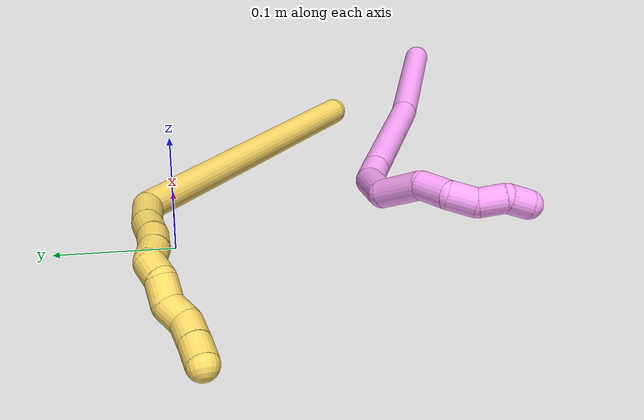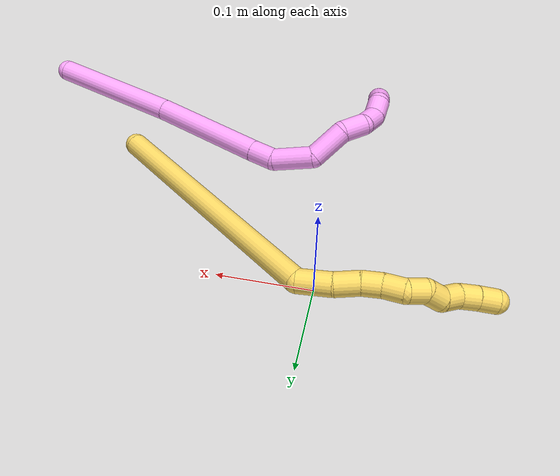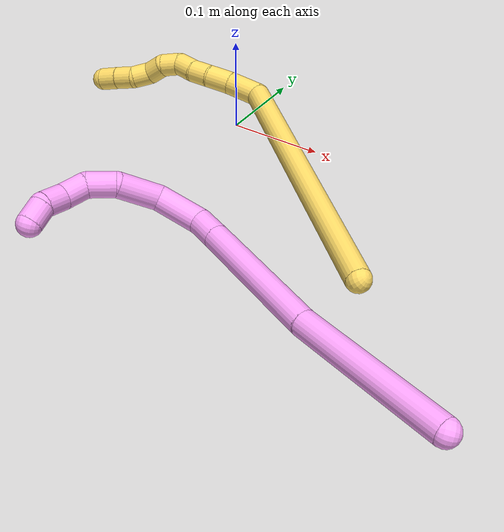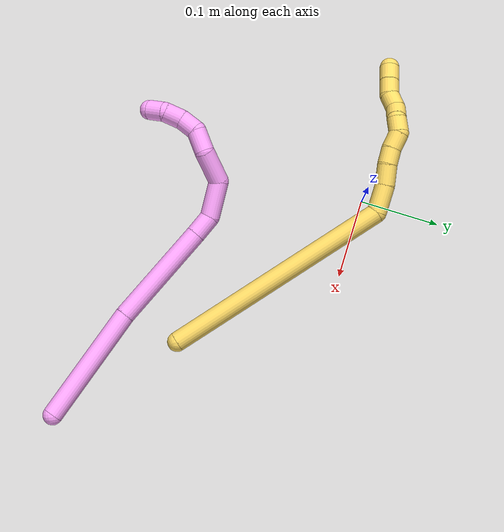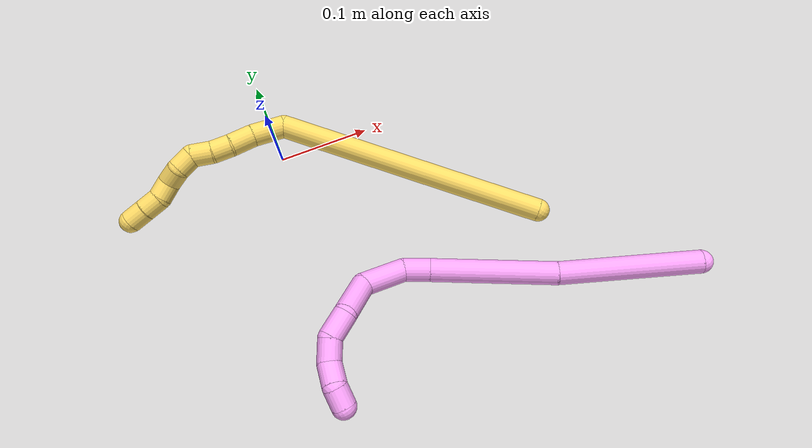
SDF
<sdf version="1.7">
 <world name="default">
  <model name="4">
   <static>0</static>
   <link name="4">
    <collision name="collision-cylinder-e_1_1_4">
     <pose>-0.053706 -0.000808 -0.052831 3.1263 -0.793553 -3.1051</pose>
     <geometry><cylinder><radius>0.0125</radius><length>0.150679</length></cylinder></geometry>
     <surface>
      <friction><ode><mu>1.16</mu><mu2>1.16</mu2><slip1>0</slip1><slip2>0</slip2></ode></friction>
      <contact><ode><kp>1e+06</kp><kd>1</kd><max_vel>0</max_vel><min_depth>0.001</min_depth></ode></contact>
     </surface>
    </collision>
    <visual name="visual-cylinder-e_1_1_4">
     <pose>-0.053706 -0.000808 -0.052831 3.1263 -0.793553 -3.1051</pose>
     <geometry><cylinder><radius>0.0125</radius><length>0.150679</length></cylinder></geometry>
     <material><ambient>1 0.65098 0.996078 1</ambient></material>
    </visual>
    <collision name="collision-cylinder-e_2_4_5">
     <pose>-0.158483 -0.007376 -0.148757 3.00871 -0.865526 -2.85549</pose>
     <geometry><cylinder><radius>0.0125</radius><length>0.134145</length></cylinder></geometry>
     <surface>
      <friction><ode><mu>1.16</mu><mu2>1.16</mu2><slip1>0</slip1><slip2>0</slip2></ode></friction>
      <contact><ode><kp>1e+06</kp><kd>1</kd><max_vel>0</max_vel><min_depth>0.001</min_depth></ode></contact>
     </surface>
    </collision>
    <visual name="visual-cylinder-e_2_4_5">
     <pose>-0.158483 -0.007376 -0.148757 3.00871 -0.865526 -2.85549</pose>
     <geometry><cylinder><radius>0.0125</radius><length>0.134145</length></cylinder></geometry>
     <material><ambient>1 0.65098 0.996078 1</ambient></material>
    </visual>
    <collision name="collision-cylinder-e_3_5_6">
     <pose>-0.220013 -0.014391 -0.201204 3.00827 -0.836817 -2.84354</pose>
     <geometry><cylinder><radius>0.0125</radius><length>0.02817</length></cylinder></geometry>
     <surface>
      <friction><ode><mu>1.16</mu><mu2>1.16</mu2><slip1>0</slip1><slip2>0</slip2></ode></friction>
      <contact><ode><kp>1e+06</kp><kd>1</kd><max_vel>0</max_vel><min_depth>0.001</min_depth></ode></contact>
     </surface>
    </collision>
    <visual name="visual-cylinder-e_3_5_6">
     <pose>-0.220013 -0.014391 -0.201204 3.00827 -0.836817 -2.84354</pose>
     <geometry><cylinder><radius>0.0125</radius><length>0.02817</length></cylinder></geometry>
     <material><ambient>1 0.65098 0.996078 1</ambient></material>
    </visual>
    <collision name="collision-cylinder-e_4_6_7">
     <pose>-0.238692 -0.018212 -0.232222 3.02369 -0.360325 -2.51485</pose>
     <geometry><cylinder><radius>0.0125</radius><length>0.046633</length></cylinder></geometry>
     <surface>
      <friction><ode><mu>1.16</mu><mu2>1.16</mu2><slip1>0</slip1><slip2>0</slip2></ode></friction>
      <contact><ode><kp>1e+06</kp><kd>1</kd><max_vel>0</max_vel><min_depth>0.001</min_depth></ode></contact>
     </surface>
    </collision>
    <visual name="visual-cylinder-e_4_6_7">
     <pose>-0.238692 -0.018212 -0.232222 3.02369 -0.360325 -2.51485</pose>
     <geometry><cylinder><radius>0.0125</radius><length>0.046633</length></cylinder></geometry>
     <material><ambient>1 0.65098 0.996078 1</ambient></material>
    </visual>
    <collision name="collision-cylinder-e_5_7_8">
     <pose>-0.239044 -0.023898 -0.27375 2.98581 0.373103 2.35738</pose>
     <geometry><cylinder><radius>0.0125</radius><length>0.043177</length></cylinder></geometry>
     <surface>
      <friction><ode><mu>1.16</mu><mu2>1.16</mu2><slip1>0</slip1><slip2>0</slip2></ode></friction>
      <contact><ode><kp>1e+06</kp><kd>1</kd><max_vel>0</max_vel><min_depth>0.001</min_depth></ode></contact>
     </surface>
    </collision>
    <visual name="visual-cylinder-e_5_7_8">
     <pose>-0.239044 -0.023898 -0.27375 2.98581 0.373103 2.35738</pose>
     <geometry><cylinder><radius>0.0125</radius><length>0.043177</length></cylinder></geometry>
     <material><ambient>1 0.65098 0.996078 1</ambient></material>
    </visual>
    <collision name="collision-cylinder-e_6_8_9">
     <pose>-0.228974 -0.023367 -0.307024 -2.87594 0.156967 -1.064</pose>
     <geometry><cylinder><radius>0.0125</radius><length>0.028151</length></cylinder></geometry>
     <surface>
      <friction><ode><mu>1.16</mu><mu2>1.16</mu2><slip1>0</slip1><slip2>0</slip2></ode></friction>
      <contact><ode><kp>1e+06</kp><kd>1</kd><max_vel>0</max_vel><min_depth>0.001</min_depth></ode></contact>
     </surface>
    </collision>
    <visual name="visual-cylinder-e_6_8_9">
     <pose>-0.228974 -0.023367 -0.307024 -2.87594 0.156967 -1.064</pose>
     <geometry><cylinder><radius>0.0125</radius><length>0.028151</length></cylinder></geometry>
     <material><ambient>1 0.65098 0.996078 1</ambient></material>
    </visual>
    <collision name="collision-cylinder-e_7_9_10">
     <pose>-0.220529 -0.013191 -0.328434 -2.45704 0.54418 -1.32867</pose>
     <geometry><cylinder><radius>0.0125</radius><length>0.024126</length></cylinder></geometry>
     <surface>
      <friction><ode><mu>1.16</mu><mu2>1.16</mu2><slip1>0</slip1><slip2>0</slip2></ode></friction>
      <contact><ode><kp>1e+06</kp><kd>1</kd><max_vel>0</max_vel><min_depth>0.001</min_depth></ode></contact>
     </surface>
    </collision>
    <visual name="visual-cylinder-e_7_9_10">
     <pose>-0.220529 -0.013191 -0.328434 -2.45704 0.54418 -1.32867</pose>
     <geometry><cylinder><radius>0.0125</radius><length>0.024126</length></cylinder></geometry>
     <material><ambient>1 0.65098 0.996078 1</ambient></material>
    </visual>
    <collision name="collision-cylinder-e_8_10_11">
     <pose>-0.204502 -0.003909 -0.342674 -2.72592 0.961592 -2.37322</pose>
     <geometry><cylinder><radius>0.0125</radius><length>0.023856</length></cylinder></geometry>
     <surface>
      <friction><ode><mu>1.16</mu><mu2>1.16</mu2><slip1>0</slip1><slip2>0</slip2></ode></friction>
      <contact><ode><kp>1e+06</kp><kd>1</kd><max_vel>0</max_vel><min_depth>0.001</min_depth></ode></contact>
     </surface>
    </collision>
    <visual name="visual-cylinder-e_8_10_11">
     <pose>-0.204502 -0.003909 -0.342674 -2.72592 0.961592 -2.37322</pose>
     <geometry><cylinder><radius>0.0125</radius><length>0.023856</length></cylinder></geometry>
     <material><ambient>1 0.65098 0.996078 1</ambient></material>
    </visual>
    <collision name="collision-cylinder-e_9_11_2">
     <pose>-0.187595 0.006229 -0.351297 -1.88253 0.743027 -0.982319</pose>
     <geometry><cylinder><radius>0.0125</radius><length>0.021063</length></cylinder></geometry>
     <surface>
      <friction><ode><mu>1.16</mu><mu2>1.16</mu2><slip1>0</slip1><slip2>0</slip2></ode></friction>
      <contact><ode><kp>1e+06</kp><kd>1</kd><max_vel>0</max_vel><min_depth>0.001</min_depth></ode></contact>
     </surface>
    </collision>
    <visual name="visual-cylinder-e_9_11_2">
     <pose>-0.187595 0.006229 -0.351297 -1.88253 0.743027 -0.982319</pose>
     <geometry><cylinder><radius>0.0125</radius><length>0.021063</length></cylinder></geometry>
     <material><ambient>1 0.65098 0.996078 1</ambient></material>
    </visual>
    <collision name="collision-sphere-2">
     <pose>-0.18047 0.01361 -0.353675 0 -0 0</pose>
     <geometry><sphere><radius>0.0125</radius></sphere></geometry>
     <surface>
      <friction><ode><mu>1.16</mu><mu2>1.16</mu2><slip1>0</slip1><slip2>0</slip2></ode></friction>
      <contact><ode><kp>1e+06</kp><kd>1</kd><max_vel>0</max_vel><min_depth>0.001</min_depth></ode></contact>
     </surface>
    </collision>
    <visual name="visual-sphere-2">
     <pose>-0.18047 0.01361 -0.353675 0 -0 0</pose>
     <geometry><sphere><radius>0.0125</radius></sphere></geometry>
     <material><ambient>1 0.65098 0.996078 1</ambient></material>
    </visual>
    <collision name="collision-sphere-11">
     <pose>-0.19472 -0.001153 -0.348918 0 -0 0</pose>
     <geometry><sphere><radius>0.0125</radius></sphere></geometry>
     <surface>
      <friction><ode><mu>1.16</mu><mu2>1.16</mu2><slip1>0</slip1><slip2>0</slip2></ode></friction>
      <contact><ode><kp>1e+06</kp><kd>1</kd><max_vel>0</max_vel><min_depth>0.001</min_depth></ode></contact>
     </surface>
    </collision>
    <visual name="visual-sphere-11">
     <pose>-0.19472 -0.001153 -0.348918 0 -0 0</pose>
     <geometry><sphere><radius>0.0125</radius></sphere></geometry>
     <material><ambient>1 0.65098 0.996078 1</ambient></material>
    </visual>
    <collision name="collision-sphere-10">
     <pose>-0.214284 -0.006666 -0.33643 0 -0 0</pose>
     <geometry><sphere><radius>0.0125</radius></sphere></geometry>
     <surface>
      <friction><ode><mu>1.16</mu><mu2>1.16</mu2><slip1>0</slip1><slip2>0</slip2></ode></friction>
      <contact><ode><kp>1e+06</kp><kd>1</kd><max_vel>0</max_vel><min_depth>0.001</min_depth></ode></contact>
     </surface>
    </collision>
    <visual name="visual-sphere-10">
     <pose>-0.214284 -0.006666 -0.33643 0 -0 0</pose>
     <geometry><sphere><radius>0.0125</radius></sphere></geometry>
     <material><ambient>1 0.65098 0.996078 1</ambient></material>
    </visual>
    <collision name="collision-sphere-9">
     <pose>-0.226774 -0.019717 -0.320439 0 -0 0</pose>
     <geometry><sphere><radius>0.0125</radius></sphere></geometry>
     <surface>
      <friction><ode><mu>1.16</mu><mu2>1.16</mu2><slip1>0</slip1><slip2>0</slip2></ode></friction>
      <contact><ode><kp>1e+06</kp><kd>1</kd><max_vel>0</max_vel><min_depth>0.001</min_depth></ode></contact>
     </surface>
    </collision>
    <visual name="visual-sphere-9">
     <pose>-0.226774 -0.019717 -0.320439 0 -0 0</pose>
     <geometry><sphere><radius>0.0125</radius></sphere></geometry>
     <material><ambient>1 0.65098 0.996078 1</ambient></material>
    </visual>
    <collision name="collision-sphere-4">
     <pose>-0.107411 -0.001616 -0.105661 0 -0 0</pose>
     <geometry><sphere><radius>0.0125</radius></sphere></geometry>
     <surface>
      <friction><ode><mu>1.16</mu><mu2>1.16</mu2><slip1>0</slip1><slip2>0</slip2></ode></friction>
      <contact><ode><kp>1e+06</kp><kd>1</kd><max_vel>0</max_vel><min_depth>0.001</min_depth></ode></contact>
     </surface>
    </collision>
    <visual name="visual-sphere-4">
     <pose>-0.107411 -0.001616 -0.105661 0 -0 0</pose>
     <geometry><sphere><radius>0.0125</radius></sphere></geometry>
     <material><ambient>1 0.65098 0.996078 1</ambient></material>
    </visual>
    <collision name="collision-sphere-1">
     <geometry><sphere><radius>0.0125</radius></sphere></geometry>
     <surface>
      <friction><ode><mu>1.16</mu><mu2>1.16</mu2><slip1>0</slip1><slip2>0</slip2></ode></friction>
      <contact><ode><kp>1e+06</kp><kd>1</kd><max_vel>0</max_vel><min_depth>0.001</min_depth></ode></contact>
     </surface>
    </collision>
    <visual name="visual-sphere-1">
     <geometry><sphere><radius>0.0125</radius></sphere></geometry>
     <material><ambient>1 0.65098 0.996078 1</ambient></material>
    </visual>
    <collision name="collision-sphere-8">
     <pose>-0.231175 -0.027017 -0.29361 0 -0 0</pose>
     <geometry><sphere><radius>0.0125</radius></sphere></geometry>
     <surface>
      <friction><ode><mu>1.16</mu><mu2>1.16</mu2><slip1>0</slip1><slip2>0</slip2></ode></friction>
      <contact><ode><kp>1e+06</kp><kd>1</kd><max_vel>0</max_vel><min_depth>0.001</min_depth></ode></contact>
     </surface>
    </collision>
    <visual name="visual-sphere-8">
     <pose>-0.231175 -0.027017 -0.29361 0 -0 0</pose>
     <geometry><sphere><radius>0.0125</radius></sphere></geometry>
     <material><ambient>1 0.65098 0.996078 1</ambient></material>
    </visual>
    <collision name="collision-sphere-5">
     <pose>-0.209554 -0.013137 -0.191853 0 -0 0</pose>
     <geometry><sphere><radius>0.0125</radius></sphere></geometry>
     <surface>
      <friction><ode><mu>1.16</mu><mu2>1.16</mu2><slip1>0</slip1><slip2>0</slip2></ode></friction>
      <contact><ode><kp>1e+06</kp><kd>1</kd><max_vel>0</max_vel><min_depth>0.001</min_depth></ode></contact>
     </surface>
    </collision>
    <visual name="visual-sphere-5">
     <pose>-0.209554 -0.013137 -0.191853 0 -0 0</pose>
     <geometry><sphere><radius>0.0125</radius></sphere></geometry>
     <material><ambient>1 0.65098 0.996078 1</ambient></material>
    </visual>
    <collision name="collision-sphere-6">
     <pose>-0.230471 -0.015645 -0.210555 0 -0 0</pose>
     <geometry><sphere><radius>0.0125</radius></sphere></geometry>
     <surface>
      <friction><ode><mu>1.16</mu><mu2>1.16</mu2><slip1>0</slip1><slip2>0</slip2></ode></friction>
      <contact><ode><kp>1e+06</kp><kd>1</kd><max_vel>0</max_vel><min_depth>0.001</min_depth></ode></contact>
     </surface>
    </collision>
    <visual name="visual-sphere-6">
     <pose>-0.230471 -0.015645 -0.210555 0 -0 0</pose>
     <geometry><sphere><radius>0.0125</radius></sphere></geometry>
     <material><ambient>1 0.65098 0.996078 1</ambient></material>
    </visual>
    <collision name="collision-sphere-7">
     <pose>-0.246913 -0.020779 -0.25389 0 -0 0</pose>
     <geometry><sphere><radius>0.0125</radius></sphere></geometry>
     <surface>
      <friction><ode><mu>1.16</mu><mu2>1.16</mu2><slip1>0</slip1><slip2>0</slip2></ode></friction>
      <contact><ode><kp>1e+06</kp><kd>1</kd><max_vel>0</max_vel><min_depth>0.001</min_depth></ode></contact>
     </surface>
    </collision>
    <visual name="visual-sphere-7">
     <pose>-0.246913 -0.020779 -0.25389 0 -0 0</pose>
     <geometry><sphere><radius>0.0125</radius></sphere></geometry>
     <material><ambient>1 0.65098 0.996078 1</ambient></material>
    </visual>
    <inertial>
     <pose>-0.155196 -0.008672 -0.176747 0 -0 0</pose>
     <mass>0.5</mass>
     <inertia>
      <ixx>-0.000412</ixx>
      <ixy>0</ixy>
      <ixz>0</ixz>
      <iyy>0.000461</iyy>
      <iyz>0</iyz>
      <izz>0.000355</izz>
     </inertia>
    </inertial>
   </link>
   <pose>0.369553 -0.288035 0.018462 -1.83751 -0.32077 -1.05266</pose>
  </model>
  <model name="5">
   <static>0</static>
   <link name="5">
    <collision name="collision-cylinder-e_1_1_4">
     <pose>-0.114398 0.069211 0.062332 -0.83764 -0.887459 0.417055</pose>
     <geometry><cylinder><radius>0.0125</radius><length>0.295041</length></cylinder></geometry>
     <surface>
      <friction><ode><mu>1.16</mu><mu2>1.16</mu2><slip1>0</slip1><slip2>0</slip2></ode></friction>
      <contact><ode><kp>1e+06</kp><kd>1</kd><max_vel>0</max_vel><min_depth>0.001</min_depth></ode></contact>
     </surface>
    </collision>
    <visual name="visual-cylinder-e_1_1_4">
     <pose>-0.114398 0.069211 0.062332 -0.83764 -0.887459 0.417055</pose>
     <geometry><cylinder><radius>0.0125</radius><length>0.295041</length></cylinder></geometry>
     <material><ambient>1 0.858824 0.4 1</ambient></material>
    </visual>
    <collision name="collision-cylinder-e_2_4_5">
     <pose>-0.232168 0.151706 0.136098 -0.86016 -0.190091 0.087406</pose>
     <geometry><cylinder><radius>0.0125</radius><length>0.035697</length></cylinder></geometry>
     <surface>
      <friction><ode><mu>1.16</mu><mu2>1.16</mu2><slip1>0</slip1><slip2>0</slip2></ode></friction>
      <contact><ode><kp>1e+06</kp><kd>1</kd><max_vel>0</max_vel><min_depth>0.001</min_depth></ode></contact>
     </surface>
    </collision>
    <visual name="visual-cylinder-e_2_4_5">
     <pose>-0.232168 0.151706 0.136098 -0.86016 -0.190091 0.087406</pose>
     <geometry><cylinder><radius>0.0125</radius><length>0.035697</length></cylinder></geometry>
     <material><ambient>1 0.858824 0.4 1</ambient></material>
    </visual>
    <collision name="collision-cylinder-e_3_5_6">
     <pose>-0.235684 0.175242 0.155661 -0.900278 -0.010971 0.005301</pose>
     <geometry><cylinder><radius>0.0125</radius><length>0.026169</length></cylinder></geometry>
     <surface>
      <friction><ode><mu>1.16</mu><mu2>1.16</mu2><slip1>0</slip1><slip2>0</slip2></ode></friction>
      <contact><ode><kp>1e+06</kp><kd>1</kd><max_vel>0</max_vel><min_depth>0.001</min_depth></ode></contact>
     </surface>
    </collision>
    <visual name="visual-cylinder-e_3_5_6">
     <pose>-0.235684 0.175242 0.155661 -0.900278 -0.010971 0.005301</pose>
     <geometry><cylinder><radius>0.0125</radius><length>0.026169</length></cylinder></geometry>
     <material><ambient>1 0.858824 0.4 1</ambient></material>
    </visual>
    <collision name="collision-cylinder-e_4_6_7">
     <pose>-0.237311 0.192772 0.170882 -0.798529 -0.145001 0.061268</pose>
     <geometry><cylinder><radius>0.0125</radius><length>0.02054</length></cylinder></geometry>
     <surface>
      <friction><ode><mu>1.16</mu><mu2>1.16</mu2><slip1>0</slip1><slip2>0</slip2></ode></friction>
      <contact><ode><kp>1e+06</kp><kd>1</kd><max_vel>0</max_vel><min_depth>0.001</min_depth></ode></contact>
     </surface>
    </collision>
    <visual name="visual-cylinder-e_4_6_7">
     <pose>-0.237311 0.192772 0.170882 -0.798529 -0.145001 0.061268</pose>
     <geometry><cylinder><radius>0.0125</radius><length>0.02054</length></cylinder></geometry>
     <material><ambient>1 0.858824 0.4 1</ambient></material>
    </visual>
    <collision name="collision-cylinder-e_5_7_8">
     <pose>-0.242494 0.207578 0.18514 -0.80984 -0.341937 0.147731</pose>
     <geometry><cylinder><radius>0.0125</radius><length>0.022063</length></cylinder></geometry>
     <surface>
      <friction><ode><mu>1.16</mu><mu2>1.16</mu2><slip1>0</slip1><slip2>0</slip2></ode></friction>
      <contact><ode><kp>1e+06</kp><kd>1</kd><max_vel>0</max_vel><min_depth>0.001</min_depth></ode></contact>
     </surface>
    </collision>
    <visual name="visual-cylinder-e_5_7_8">
     <pose>-0.242494 0.207578 0.18514 -0.80984 -0.341937 0.147731</pose>
     <geometry><cylinder><radius>0.0125</radius><length>0.022063</length></cylinder></geometry>
     <material><ambient>1 0.858824 0.4 1</ambient></material>
    </visual>
    <collision name="collision-cylinder-e_6_8_9">
     <pose>-0.243937 0.220606 0.200383 -0.598067 0.226912 -0.070225</pose>
     <geometry><cylinder><radius>0.0125</radius><length>0.020059</length></cylinder></geometry>
     <surface>
      <friction><ode><mu>1.16</mu><mu2>1.16</mu2><slip1>0</slip1><slip2>0</slip2></ode></friction>
      <contact><ode><kp>1e+06</kp><kd>1</kd><max_vel>0</max_vel><min_depth>0.001</min_depth></ode></contact>
     </surface>
    </collision>
    <visual name="visual-cylinder-e_6_8_9">
     <pose>-0.243937 0.220606 0.200383 -0.598067 0.226912 -0.070225</pose>
     <geometry><cylinder><radius>0.0125</radius><length>0.020059</length></cylinder></geometry>
     <material><ambient>1 0.858824 0.4 1</ambient></material>
    </visual>
    <collision name="collision-cylinder-e_7_9_10">
     <pose>-0.240787 0.22727 0.218488 -0.115245 0.088318 -0.005098</pose>
     <geometry><cylinder><radius>0.0125</radius><length>0.02027</length></cylinder></geometry>
     <surface>
      <friction><ode><mu>1.16</mu><mu2>1.16</mu2><slip1>0</slip1><slip2>0</slip2></ode></friction>
      <contact><ode><kp>1e+06</kp><kd>1</kd><max_vel>0</max_vel><min_depth>0.001</min_depth></ode></contact>
     </surface>
    </collision>
    <visual name="visual-cylinder-e_7_9_10">
     <pose>-0.240787 0.22727 0.218488 -0.115245 0.088318 -0.005098</pose>
     <geometry><cylinder><radius>0.0125</radius><length>0.02027</length></cylinder></geometry>
     <material><ambient>1 0.858824 0.4 1</ambient></material>
    </visual>
    <collision name="collision-cylinder-e_8_10_11">
     <pose>-0.235282 0.232892 0.236227 -0.524514 0.47761 -0.130518</pose>
     <geometry><cylinder><radius>0.0125</radius><length>0.020061</length></cylinder></geometry>
     <surface>
      <friction><ode><mu>1.16</mu><mu2>1.16</mu2><slip1>0</slip1><slip2>0</slip2></ode></friction>
      <contact><ode><kp>1e+06</kp><kd>1</kd><max_vel>0</max_vel><min_depth>0.001</min_depth></ode></contact>
     </surface>
    </collision>
    <visual name="visual-cylinder-e_8_10_11">
     <pose>-0.235282 0.232892 0.236227 -0.524514 0.47761 -0.130518</pose>
     <geometry><cylinder><radius>0.0125</radius><length>0.020061</length></cylinder></geometry>
     <material><ambient>1 0.858824 0.4 1</ambient></material>
    </visual>
    <collision name="collision-cylinder-e_9_11_12">
     <pose>-0.229763 0.242671 0.252364 -0.562982 0.090922 -0.026309</pose>
     <geometry><cylinder><radius>0.0125</radius><length>0.020013</length></cylinder></geometry>
     <surface>
      <friction><ode><mu>1.16</mu><mu2>1.16</mu2><slip1>0</slip1><slip2>0</slip2></ode></friction>
      <contact><ode><kp>1e+06</kp><kd>1</kd><max_vel>0</max_vel><min_depth>0.001</min_depth></ode></contact>
     </surface>
    </collision>
    <visual name="visual-cylinder-e_9_11_12">
     <pose>-0.229763 0.242671 0.252364 -0.562982 0.090922 -0.026309</pose>
     <geometry><cylinder><radius>0.0125</radius><length>0.020013</length></cylinder></geometry>
     <material><ambient>1 0.858824 0.4 1</ambient></material>
    </visual>
    <collision name="collision-cylinder-e_10_12_2">
     <pose>-0.228269 0.252947 0.269507 -0.517167 0.058282 -0.01542</pose>
     <geometry><cylinder><radius>0.0125</radius><length>0.020088</length></cylinder></geometry>
     <surface>
      <friction><ode><mu>1.16</mu><mu2>1.16</mu2><slip1>0</slip1><slip2>0</slip2></ode></friction>
      <contact><ode><kp>1e+06</kp><kd>1</kd><max_vel>0</max_vel><min_depth>0.001</min_depth></ode></contact>
     </surface>
    </collision>
    <visual name="visual-cylinder-e_10_12_2">
     <pose>-0.228269 0.252947 0.269507 -0.517167 0.058282 -0.01542</pose>
     <geometry><cylinder><radius>0.0125</radius><length>0.020088</length></cylinder></geometry>
     <material><ambient>1 0.858824 0.4 1</ambient></material>
    </visual>
    <collision name="collision-sphere-2">
     <pose>-0.227684 0.257904 0.278223 0 -0 0</pose>
     <geometry><sphere><radius>0.0125</radius></sphere></geometry>
     <surface>
      <friction><ode><mu>1.16</mu><mu2>1.16</mu2><slip1>0</slip1><slip2>0</slip2></ode></friction>
      <contact><ode><kp>1e+06</kp><kd>1</kd><max_vel>0</max_vel><min_depth>0.001</min_depth></ode></contact>
     </surface>
    </collision>
    <visual name="visual-sphere-2">
     <pose>-0.227684 0.257904 0.278223 0 -0 0</pose>
     <geometry><sphere><radius>0.0125</radius></sphere></geometry>
     <material><ambient>1 0.858824 0.4 1</ambient></material>
    </visual>
    <collision name="collision-sphere-12">
     <pose>-0.228854 0.24799 0.260791 0 -0 0</pose>
     <geometry><sphere><radius>0.0125</radius></sphere></geometry>
     <surface>
      <friction><ode><mu>1.16</mu><mu2>1.16</mu2><slip1>0</slip1><slip2>0</slip2></ode></friction>
      <contact><ode><kp>1e+06</kp><kd>1</kd><max_vel>0</max_vel><min_depth>0.001</min_depth></ode></contact>
     </surface>
    </collision>
    <visual name="visual-sphere-12">
     <pose>-0.228854 0.24799 0.260791 0 -0 0</pose>
     <geometry><sphere><radius>0.0125</radius></sphere></geometry>
     <material><ambient>1 0.858824 0.4 1</ambient></material>
    </visual>
    <collision name="collision-sphere-11">
     <pose>-0.230671 0.237353 0.243937 0 -0 0</pose>
     <geometry><sphere><radius>0.0125</radius></sphere></geometry>
     <surface>
      <friction><ode><mu>1.16</mu><mu2>1.16</mu2><slip1>0</slip1><slip2>0</slip2></ode></friction>
      <contact><ode><kp>1e+06</kp><kd>1</kd><max_vel>0</max_vel><min_depth>0.001</min_depth></ode></contact>
     </surface>
    </collision>
    <visual name="visual-sphere-11">
     <pose>-0.230671 0.237353 0.243937 0 -0 0</pose>
     <geometry><sphere><radius>0.0125</radius></sphere></geometry>
     <material><ambient>1 0.858824 0.4 1</ambient></material>
    </visual>
    <collision name="collision-sphere-10">
     <pose>-0.239893 0.228431 0.228516 0 -0 0</pose>
     <geometry><sphere><radius>0.0125</radius></sphere></geometry>
     <surface>
      <friction><ode><mu>1.16</mu><mu2>1.16</mu2><slip1>0</slip1><slip2>0</slip2></ode></friction>
      <contact><ode><kp>1e+06</kp><kd>1</kd><max_vel>0</max_vel><min_depth>0.001</min_depth></ode></contact>
     </surface>
    </collision>
    <visual name="visual-sphere-10">
     <pose>-0.239893 0.228431 0.228516 0 -0 0</pose>
     <geometry><sphere><radius>0.0125</radius></sphere></geometry>
     <material><ambient>1 0.858824 0.4 1</ambient></material>
    </visual>
    <collision name="collision-sphere-9">
     <pose>-0.24168 0.226109 0.208459 0 -0 0</pose>
     <geometry><sphere><radius>0.0125</radius></sphere></geometry>
     <surface>
      <friction><ode><mu>1.16</mu><mu2>1.16</mu2><slip1>0</slip1><slip2>0</slip2></ode></friction>
      <contact><ode><kp>1e+06</kp><kd>1</kd><max_vel>0</max_vel><min_depth>0.001</min_depth></ode></contact>
     </surface>
    </collision>
    <visual name="visual-sphere-9">
     <pose>-0.24168 0.226109 0.208459 0 -0 0</pose>
     <geometry><sphere><radius>0.0125</radius></sphere></geometry>
     <material><ambient>1 0.858824 0.4 1</ambient></material>
    </visual>
    <collision name="collision-sphere-4">
     <pose>-0.228795 0.138422 0.124665 0 -0 0</pose>
     <geometry><sphere><radius>0.0125</radius></sphere></geometry>
     <surface>
      <friction><ode><mu>1.16</mu><mu2>1.16</mu2><slip1>0</slip1><slip2>0</slip2></ode></friction>
      <contact><ode><kp>1e+06</kp><kd>1</kd><max_vel>0</max_vel><min_depth>0.001</min_depth></ode></contact>
     </surface>
    </collision>
    <visual name="visual-sphere-4">
     <pose>-0.228795 0.138422 0.124665 0 -0 0</pose>
     <geometry><sphere><radius>0.0125</radius></sphere></geometry>
     <material><ambient>1 0.858824 0.4 1</ambient></material>
    </visual>
    <collision name="collision-sphere-1">
     <geometry><sphere><radius>0.0125</radius></sphere></geometry>
     <surface>
      <friction><ode><mu>1.16</mu><mu2>1.16</mu2><slip1>0</slip1><slip2>0</slip2></ode></friction>
      <contact><ode><kp>1e+06</kp><kd>1</kd><max_vel>0</max_vel><min_depth>0.001</min_depth></ode></contact>
     </surface>
    </collision>
    <visual name="visual-sphere-1">
     <geometry><sphere><radius>0.0125</radius></sphere></geometry>
     <material><ambient>1 0.858824 0.4 1</ambient></material>
    </visual>
    <collision name="collision-sphere-8">
     <pose>-0.246193 0.215104 0.192307 0 -0 0</pose>
     <geometry><sphere><radius>0.0125</radius></sphere></geometry>
     <surface>
      <friction><ode><mu>1.16</mu><mu2>1.16</mu2><slip1>0</slip1><slip2>0</slip2></ode></friction>
      <contact><ode><kp>1e+06</kp><kd>1</kd><max_vel>0</max_vel><min_depth>0.001</min_depth></ode></contact>
     </surface>
    </collision>
    <visual name="visual-sphere-8">
     <pose>-0.246193 0.215104 0.192307 0 -0 0</pose>
     <geometry><sphere><radius>0.0125</radius></sphere></geometry>
     <material><ambient>1 0.858824 0.4 1</ambient></material>
    </visual>
    <collision name="collision-sphere-5">
     <pose>-0.23554 0.164991 0.147531 0 -0 0</pose>
     <geometry><sphere><radius>0.0125</radius></sphere></geometry>
     <surface>
      <friction><ode><mu>1.16</mu><mu2>1.16</mu2><slip1>0</slip1><slip2>0</slip2></ode></friction>
      <contact><ode><kp>1e+06</kp><kd>1</kd><max_vel>0</max_vel><min_depth>0.001</min_depth></ode></contact>
     </surface>
    </collision>
    <visual name="visual-sphere-5">
     <pose>-0.23554 0.164991 0.147531 0 -0 0</pose>
     <geometry><sphere><radius>0.0125</radius></sphere></geometry>
     <material><ambient>1 0.858824 0.4 1</ambient></material>
    </visual>
    <collision name="collision-sphere-6">
     <pose>-0.235827 0.185493 0.163791 0 -0 0</pose>
     <geometry><sphere><radius>0.0125</radius></sphere></geometry>
     <surface>
      <friction><ode><mu>1.16</mu><mu2>1.16</mu2><slip1>0</slip1><slip2>0</slip2></ode></friction>
      <contact><ode><kp>1e+06</kp><kd>1</kd><max_vel>0</max_vel><min_depth>0.001</min_depth></ode></contact>
     </surface>
    </collision>
    <visual name="visual-sphere-6">
     <pose>-0.235827 0.185493 0.163791 0 -0 0</pose>
     <geometry><sphere><radius>0.0125</radius></sphere></geometry>
     <material><ambient>1 0.858824 0.4 1</ambient></material>
    </visual>
    <collision name="collision-sphere-7">
     <pose>-0.238795 0.200051 0.177973 0 -0 0</pose>
     <geometry><sphere><radius>0.0125</radius></sphere></geometry>
     <surface>
      <friction><ode><mu>1.16</mu><mu2>1.16</mu2><slip1>0</slip1><slip2>0</slip2></ode></friction>
      <contact><ode><kp>1e+06</kp><kd>1</kd><max_vel>0</max_vel><min_depth>0.001</min_depth></ode></contact>
     </surface>
    </collision>
    <visual name="visual-sphere-7">
     <pose>-0.238795 0.200051 0.177973 0 -0 0</pose>
     <geometry><sphere><radius>0.0125</radius></sphere></geometry>
     <material><ambient>1 0.858824 0.4 1</ambient></material>
    </visual>
    <inertial>
     <pose>-0.164218 0.125204 0.117137 0 -0 0</pose>
     <mass>0.5</mass>
     <inertia>
      <ixx>0.001793</ixx>
      <ixy>0</ixy>
      <ixz>0</ixz>
      <iyy>0.002404</iyy>
      <iyz>0</iyz>
      <izz>0.00067</izz>
     </inertia>
    </inertial>
   </link>
   <pose>0.238742 -0.169331 0.012348 2.34017 0.035311 -1.38673</pose>
  </model>
 </world>
</sdf>
